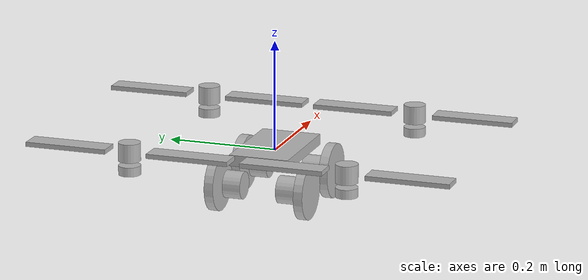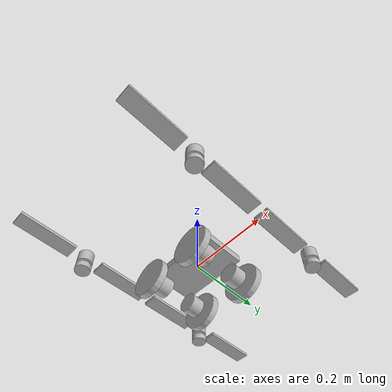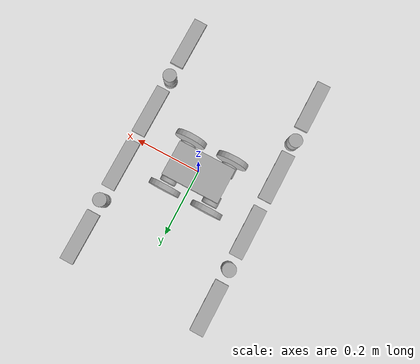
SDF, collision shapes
<sdf version='1.7'>
  <model name='arav'>
    <link name='base_link'>
      <inertial>
        <pose>1e-06 -0 -0.000651 0 -0 0</pose>
        <mass>0.510673</mass>
        <inertia>
          <ixx>0.000722388</ixx>
          <ixy>1.63791e-24</ixy>
          <ixz>-5.50202e-07</ixz>
          <iyy>0.00158624</iyy>
          <iyz>-1.38686e-13</iyz>
          <izz>0.00223359</izz>
        </inertia>
      </inertial>
      <collision name='base_link_fixed_joint_lump__frame_link_collision'>
        <pose>0 0 0 0 -0 0</pose>
        <geometry>
          <box>
            <size>0.18 0.11 0.02</size>
          </box>
        </geometry>
      </collision>
      <collision name='base_link_fixed_joint_lump__axle_leftFront_link_collision_1'>
        <pose>0.07 0.05 -0.05 1.5708 -0 0</pose>
        <geometry>
          <cylinder>
            <length>0.0333333</length>
            <radius>0.025</radius>
          </cylinder>
        </geometry>
      </collision>
      <collision name='base_link_fixed_joint_lump__axle_leftRear_link_collision_2'>
        <pose>-0.07 0.05 -0.05 1.5708 -0 0</pose>
        <geometry>
          <cylinder>
            <length>0.0333333</length>
            <radius>0.025</radius>
          </cylinder>
        </geometry>
      </collision>
      <collision name='base_link_fixed_joint_lump__axle_rightFront_link_collision_3'>
        <pose>0.07 -0.05 -0.05 1.5708 -0 0</pose>
        <geometry>
          <cylinder>
            <length>0.0333333</length>
            <radius>0.025</radius>
          </cylinder>
        </geometry>
      </collision>
      <collision name='base_link_fixed_joint_lump__axle_rightRear_link_collision_4'>
        <pose>-0.07 -0.05 -0.05 1.5708 -0 0</pose>
        <geometry>
          <cylinder>
            <length>0.0333333</length>
            <radius>0.025</radius>
          </cylinder>
        </geometry>
      </collision>
      <collision name='base_link_fixed_joint_lump__stator_leftFront_link_collision_5'>
        <pose>0.2 0.2 0 0 -0 0</pose>
        <geometry>
          <cylinder>
            <length>0.0166667</length>
            <radius>0.02</radius>
          </cylinder>
        </geometry>
      </collision>
      <collision name='base_link_fixed_joint_lump__stator_leftRear_link_collision_6'>
        <pose>-0.2 0.2 0 0 -0 0</pose>
        <geometry>
          <cylinder>
            <length>0.0166667</length>
            <radius>0.02</radius>
          </cylinder>
        </geometry>
      </collision>
      <collision name='base_link_fixed_joint_lump__stator_rightFront_link_collision_7'>
        <pose>0.2 -0.2 0 0 -0 0</pose>
        <geometry>
          <cylinder>
            <length>0.0166667</length>
            <radius>0.02</radius>
          </cylinder>
        </geometry>
      </collision>
      <collision name='base_link_fixed_joint_lump__stator_rightRear_link_collision_8'>
        <pose>-0.2 -0.2 0 0 -0 0</pose>
        <geometry>
          <cylinder>
            <length>0.0166667</length>
            <radius>0.02</radius>
          </cylinder>
        </geometry>
      </collision>
      <visual name='base_link_fixed_joint_lump__frame_link_visual'>
        <pose>0.004 0 -0.02 0 -0 0</pose>
        <geometry>
          <mesh>
            <scale>1 1 1</scale>
            <uri>model://arav/meshes/frame.dae</uri>
          </mesh>
        </geometry>
      </visual>
      <sensor name='frontLeftCamera' type='camera'>
        <update_rate>0.4</update_rate>
        <camera name='frontLeftCamera'>
          <horizontal_fov>1.5708</horizontal_fov>
          <image>
            <width>1280</width>
            <height>720</height>
            <format>R8G8B8</format>
          </image>
          <clip>
            <near>0.01</near>
            <far>100</far>
          </clip>
          <noise>
            <type>gaussian</type>
            <mean>0</mean>
            <stddev>0</stddev>
          </noise>
        </camera>
        <plugin name='camera_plugin' filename='libgazebo_ros_camera.so'>
          <alwaysOn>1</alwaysOn>
          <updateRate>0.4</updateRate>
          <cameraName>sensors/frontLeftCamera</cameraName>
          <imageTopicName>image</imageTopicName>
          <cameraInfoTopicName>info</cameraInfoTopicName>
          <frameName>frontLeftCamera</frameName>
        </plugin>
        <pose>-0.25 -0.05 0.1 0 -0 3.14159</pose>
      </sensor>
      <sensor name='frontRightCamera' type='camera'>
        <update_rate>0.4</update_rate>
        <camera name='frontRightCamera'>
          <horizontal_fov>1.5708</horizontal_fov>
          <image>
            <width>1280</width>
            <height>720</height>
            <format>R8G8B8</format>
          </image>
          <clip>
            <near>0.01</near>
            <far>100</far>
          </clip>
          <noise>
            <type>gaussian</type>
            <mean>0</mean>
            <stddev>0</stddev>
          </noise>
        </camera>
        <plugin name='camera_plugin' filename='libgazebo_ros_camera.so'>
          <alwaysOn>1</alwaysOn>
          <updateRate>0.4</updateRate>
          <cameraName>sensors/frontRightCamera</cameraName>
          <imageTopicName>image</imageTopicName>
          <cameraInfoTopicName>info</cameraInfoTopicName>
          <frameName>frontRightCamera</frameName>
        </plugin>
        <pose>-0.25 0.05 0.1 0 -0 3.14159</pose>
      </sensor>
      <sensor name='frontUltrasonic' type='ray'>
        <update_rate>1</update_rate>
        <visualize>1</visualize>
        <ray>
          <scan>
            <horizontal>
              <samples>10</samples>
              <resolution>1</resolution>
              <min_angle>-0.05</min_angle>
              <max_angle>0.05</max_angle>
            </horizontal>
          </scan>
          <range>
            <min>0.02</min>
            <max>6</max>
            <resolution>0.03</resolution>
          </range>
        </ray>
        <plugin name='ultrasonic_plugin' filename='libgazebo_ros_range.so'>
          <gaussianNoise>0.0</gaussianNoise>
          <alwaysOn>1</alwaysOn>
          <updateRate>1</updateRate>
          <topicName>sensors/frontUltrasonic</topicName>
          <frameName>frontUltrasonic</frameName>
          <radiation>ultrasound</radiation>
          <fov>0.05--0.05</fov>
          <visualize>1</visualize>
        </plugin>
        <pose>-0.13 0 0 0 -0 3.14159</pose>
      </sensor>
      <sensor name='leftUltrasonic' type='ray'>
        <update_rate>1</update_rate>
        <visualize>1</visualize>
        <ray>
          <scan>
            <horizontal>
              <samples>10</samples>
              <resolution>1</resolution>
              <min_angle>-0.05</min_angle>
              <max_angle>0.05</max_angle>
            </horizontal>
          </scan>
          <range>
            <min>0.02</min>
            <max>6</max>
            <resolution>0.03</resolution>
          </range>
        </ray>
        <plugin name='ultrasonic_plugin' filename='libgazebo_ros_range.so'>
          <gaussianNoise>0.0</gaussianNoise>
          <alwaysOn>1</alwaysOn>
          <updateRate>1</updateRate>
          <topicName>sensors/leftUltrasonic</topicName>
          <frameName>leftUltrasonic</frameName>
          <radiation>ultrasound</radiation>
          <fov>0.05--0.05</fov>
          <visualize>1</visualize>
        </plugin>
        <pose>-0.13 -0.075 0 0 -0 2.61799</pose>
      </sensor>
      <sensor name='rightUltrasonic' type='ray'>
        <update_rate>1</update_rate>
        <visualize>1</visualize>
        <ray>
          <scan>
            <horizontal>
              <samples>10</samples>
              <resolution>1</resolution>
              <min_angle>-0.05</min_angle>
              <max_angle>0.05</max_angle>
            </horizontal>
          </scan>
          <range>
            <min>0.02</min>
            <max>6</max>
            <resolution>0.03</resolution>
          </range>
        </ray>
        <plugin name='ultrasonic_plugin' filename='libgazebo_ros_range.so'>
          <gaussianNoise>0.0</gaussianNoise>
          <alwaysOn>1</alwaysOn>
          <updateRate>1</updateRate>
          <topicName>sensors/rightUltrasonic</topicName>
          <frameName>rightUltrasonic</frameName>
          <radiation>ultrasound</radiation>
          <fov>0.05--0.05</fov>
          <visualize>1</visualize>
        </plugin>
        <pose>-0.13 0.075 0 0 0 -2.61799</pose>
      </sensor>
      <sensor name='visualCamera' type='camera'>
        <update_rate>15</update_rate>
        <camera name='visualCamera'>
          <horizontal_fov>1.75</horizontal_fov>
          <image>
            <width>1280</width>
            <height>720</height>
            <format>R8G8B8</format>
          </image>
          <clip>
            <near>0.001</near>
            <far>100</far>
          </clip>
          <noise>
            <type>gaussian</type>
            <mean>0</mean>
            <stddev>0</stddev>
          </noise>
        </camera>
        <plugin name='camera_plugin' filename='libgazebo_ros_camera.so'>
          <alwaysOn>1</alwaysOn>
          <updateRate>15</updateRate>
          <cameraName>sensors/visualCamera</cameraName>
          <imageTopicName>image</imageTopicName>
          <cameraInfoTopicName>info</cameraInfoTopicName>
          <frameName>visualCamera</frameName>
        </plugin>
        <pose>1.2 0 0.5 0 0.2 -3.13319</pose>
      </sensor>
    </link>
    <joint name='tire_leftFront_joint' type='revolute'>
      <pose relative_to='base_link'>0.07 0.083333 -0.05 1.5708 -0 0</pose>
      <parent>base_link</parent>
      <child>tire_leftFront_link</child>
      <axis>
        <xyz>0 0 1</xyz>
        <limit>
          <effort>50</effort>
          <velocity>50</velocity>
          <lower>-1e+16</lower>
          <upper>1e+16</upper>
        </limit>
        <dynamics>
          <damping>0.1</damping>
          <friction>0.1</friction>
          <spring_reference>0</spring_reference>
          <spring_stiffness>0</spring_stiffness>
        </dynamics>
      </axis>
    </joint>
    <link name='tire_leftFront_link'>
      <pose relative_to='tire_leftFront_joint'>0 0 0 0 -0 0</pose>
      <inertial>
        <pose>0 0 0 0 -0 0</pose>
        <mass>0.00333333</mass>
        <inertia>
          <ixx>2.16049e-06</ixx>
          <ixy>0</ixy>
          <ixz>0</ixz>
          <iyy>2.16049e-06</iyy>
          <iyz>0</iyz>
          <izz>4.16667e-06</izz>
        </inertia>
      </inertial>
      <collision name='tire_leftFront_link_collision'>
        <pose>0 0 0 0 -0 0</pose>
        <geometry>
          <cylinder>
            <length>0.0166667</length>
            <radius>0.05</radius>
          </cylinder>
        </geometry>
      </collision>
    </link>
    <joint name='tire_leftRear_joint' type='revolute'>
      <pose relative_to='base_link'>-0.07 0.083333 -0.05 1.5708 -0 0</pose>
      <parent>base_link</parent>
      <child>tire_leftRear_link</child>
      <axis>
        <xyz>0 0 1</xyz>
        <limit>
          <effort>50</effort>
          <velocity>50</velocity>
          <lower>-1e+16</lower>
          <upper>1e+16</upper>
        </limit>
        <dynamics>
          <damping>0.1</damping>
          <friction>0.1</friction>
          <spring_reference>0</spring_reference>
          <spring_stiffness>0</spring_stiffness>
        </dynamics>
      </axis>
    </joint>
    <link name='tire_leftRear_link'>
      <pose relative_to='tire_leftRear_joint'>0 0 0 0 -0 0</pose>
      <inertial>
        <pose>0 0 0 0 -0 0</pose>
        <mass>0.00333333</mass>
        <inertia>
          <ixx>2.16049e-06</ixx>
          <ixy>0</ixy>
          <ixz>0</ixz>
          <iyy>2.16049e-06</iyy>
          <iyz>0</iyz>
          <izz>4.16667e-06</izz>
        </inertia>
      </inertial>
      <collision name='tire_leftRear_link_collision'>
        <pose>0 0 0 0 -0 0</pose>
        <geometry>
          <cylinder>
            <length>0.0166667</length>
            <radius>0.05</radius>
          </cylinder>
        </geometry>
      </collision>
    </link>
    <joint name='tire_rightFront_joint' type='revolute'>
      <pose relative_to='base_link'>0.07 -0.083333 -0.05 1.5708 -0 0</pose>
      <parent>base_link</parent>
      <child>tire_rightFront_link</child>
      <axis>
        <xyz>0 0 1</xyz>
        <limit>
          <effort>50</effort>
          <velocity>50</velocity>
          <lower>-1e+16</lower>
          <upper>1e+16</upper>
        </limit>
        <dynamics>
          <damping>0.1</damping>
          <friction>0.1</friction>
          <spring_reference>0</spring_reference>
          <spring_stiffness>0</spring_stiffness>
        </dynamics>
      </axis>
    </joint>
    <link name='tire_rightFront_link'>
      <pose relative_to='tire_rightFront_joint'>0 0 0 0 -0 0</pose>
      <inertial>
        <pose>0 0 0 0 -0 0</pose>
        <mass>0.00333333</mass>
        <inertia>
          <ixx>2.16049e-06</ixx>
          <ixy>0</ixy>
          <ixz>0</ixz>
          <iyy>2.16049e-06</iyy>
          <iyz>0</iyz>
          <izz>4.16667e-06</izz>
        </inertia>
      </inertial>
      <collision name='tire_rightFront_link_collision'>
        <pose>0 0 0 0 -0 0</pose>
        <geometry>
          <cylinder>
            <length>0.0166667</length>
            <radius>0.05</radius>
          </cylinder>
        </geometry>
      </collision>
    </link>
    <joint name='tire_rightRear_joint' type='revolute'>
      <pose relative_to='base_link'>-0.07 -0.083333 -0.05 1.5708 -0 0</pose>
      <parent>base_link</parent>
      <child>tire_rightRear_link</child>
      <axis>
        <xyz>0 0 1</xyz>
        <limit>
          <effort>50</effort>
          <velocity>50</velocity>
          <lower>-1e+16</lower>
          <upper>1e+16</upper>
        </limit>
        <dynamics>
          <damping>0.1</damping>
          <friction>0.1</friction>
          <spring_reference>0</spring_reference>
          <spring_stiffness>0</spring_stiffness>
        </dynamics>
      </axis>
    </joint>
    <link name='tire_rightRear_link'>
      <pose relative_to='tire_rightRear_joint'>0 0 0 0 -0 0</pose>
      <inertial>
        <pose>0 0 0 0 -0 0</pose>
        <mass>0.00333333</mass>
        <inertia>
          <ixx>2.16049e-06</ixx>
          <ixy>0</ixy>
          <ixz>0</ixz>
          <iyy>2.16049e-06</iyy>
          <iyz>0</iyz>
          <izz>4.16667e-06</izz>
        </inertia>
      </inertial>
      <collision name='tire_rightRear_link_collision'>
        <pose>0 0 0 0 -0 0</pose>
        <geometry>
          <cylinder>
            <length>0.0166667</length>
            <radius>0.05</radius>
          </cylinder>
        </geometry>
      </collision>
    </link>
    <joint name='rotor_leftFront_joint' type='revolute'>
      <pose relative_to='base_link'>0.2 0.2 0.033333 0 -0 0</pose>
      <parent>base_link</parent>
      <child>rotor_leftFront_link</child>
      <axis>
        <xyz>0 0 1</xyz>
        <limit>
          <lower>-1e+16</lower>
          <upper>1e+16</upper>
        </limit>
        <dynamics>
          <spring_reference>0</spring_reference>
          <spring_stiffness>0</spring_stiffness>
        </dynamics>
      </axis>
    </joint>
    <link name='rotor_leftFront_link'>
      <pose relative_to='rotor_leftFront_joint'>0 0 0 0 -0 0</pose>
      <inertial>
        <pose>0 0 0 0 -0 0</pose>
        <mass>0.002</mass>
        <inertia>
          <ixx>3.85185e-07</ixx>
          <ixy>0</ixy>
          <ixz>0</ixz>
          <iyy>3.85185e-07</iyy>
          <iyz>0</iyz>
          <izz>4e-07</izz>
        </inertia>
      </inertial>
      <collision name='rotor_leftFront_link_collision'>
        <pose>0 0 0 0 -0 0</pose>
        <geometry>
          <cylinder>
            <length>0.0333333</length>
            <radius>0.02</radius>
          </cylinder>
        </geometry>
      </collision>
    </link>
    <joint name='propeller_1_leftFront_joint' type='fixed'>
      <pose relative_to='rotor_leftFront_link'>0 -0.11375 0 0 -0 0</pose>
      <parent>rotor_leftFront_link</parent>
      <child>propeller_1_leftFront_link</child>
      <axis>
        <dynamics>
          <spring_reference>0</spring_reference>
          <spring_stiffness>0</spring_stiffness>
        </dynamics>
        <xyz>0 0 1</xyz>
        <limit>
          <lower>-1e+16</lower>
          <upper>1e+16</upper>
        </limit>
      </axis>
      <physics>
        <ode>
          <limit>
            <cfm>0</cfm>
            <erp>0.2</erp>
          </limit>
        </ode>
      </physics>
    </joint>
    <link name='propeller_1_leftFront_link'>
      <pose relative_to='propeller_1_leftFront_joint'>0 0 0 0 -0 0</pose>
      <inertial>
        <pose>0 0 0 1.5708 -0 0</pose>
        <mass>0.001</mass>
        <inertia>
          <ixx>1.88079e-06</ixx>
          <ixy>0</ixy>
          <ixz>0</ixz>
          <iyy>2.00833e-06</iyy>
          <iyz>0</iyz>
          <izz>1.3912e-07</izz>
        </inertia>
      </inertial>
      <collision name='propeller_1_leftFront_link_collision'>
        <pose>0 0 0 1.5708 -0 0</pose>
        <geometry>
          <box>
            <size>0.04 0.008333 0.15</size>
          </box>
        </geometry>
      </collision>
    </link>
    <joint name='propeller_2_leftFront_joint' type='fixed'>
      <pose relative_to='rotor_leftFront_link'>0 0.11375 0 0 -0 0</pose>
      <parent>rotor_leftFront_link</parent>
      <child>propeller_2_leftFront_link</child>
      <axis>
        <dynamics>
          <spring_reference>0</spring_reference>
          <spring_stiffness>0</spring_stiffness>
        </dynamics>
        <xyz>0 0 1</xyz>
        <limit>
          <lower>-1e+16</lower>
          <upper>1e+16</upper>
        </limit>
      </axis>
      <physics>
        <ode>
          <limit>
            <cfm>0</cfm>
            <erp>0.2</erp>
          </limit>
        </ode>
      </physics>
    </joint>
    <link name='propeller_2_leftFront_link'>
      <pose relative_to='propeller_2_leftFront_joint'>0 0 0 0 -0 0</pose>
      <inertial>
        <pose>0 0 0 1.5708 -0 0</pose>
        <mass>0.001</mass>
        <inertia>
          <ixx>1.88079e-06</ixx>
          <ixy>0</ixy>
          <ixz>0</ixz>
          <iyy>2.00833e-06</iyy>
          <iyz>0</iyz>
          <izz>1.3912e-07</izz>
        </inertia>
      </inertial>
      <collision name='propeller_2_leftFront_link_collision'>
        <pose>0 0 0 1.5708 -0 0</pose>
        <geometry>
          <box>
            <size>0.04 0.008333 0.15</size>
          </box>
        </geometry>
      </collision>
    </link>
    <joint name='rotor_leftRear_joint' type='revolute'>
      <pose relative_to='base_link'>-0.2 0.2 0.033333 0 -0 0</pose>
      <parent>base_link</parent>
      <child>rotor_leftRear_link</child>
      <axis>
        <xyz>0 0 1</xyz>
        <limit>
          <lower>-1e+16</lower>
          <upper>1e+16</upper>
        </limit>
        <dynamics>
          <spring_reference>0</spring_reference>
          <spring_stiffness>0</spring_stiffness>
        </dynamics>
      </axis>
    </joint>
    <link name='rotor_leftRear_link'>
      <pose relative_to='rotor_leftRear_joint'>0 0 0 0 -0 0</pose>
      <inertial>
        <pose>0 0 0 0 -0 0</pose>
        <mass>0.002</mass>
        <inertia>
          <ixx>3.85185e-07</ixx>
          <ixy>0</ixy>
          <ixz>0</ixz>
          <iyy>3.85185e-07</iyy>
          <iyz>0</iyz>
          <izz>4e-07</izz>
        </inertia>
      </inertial>
      <collision name='rotor_leftRear_link_collision'>
        <pose>0 0 0 0 -0 0</pose>
        <geometry>
          <cylinder>
            <length>0.0333333</length>
            <radius>0.02</radius>
          </cylinder>
        </geometry>
      </collision>
    </link>
    <joint name='propeller_1_leftRear_joint' type='fixed'>
      <pose relative_to='rotor_leftRear_link'>0 -0.11375 0 0 -0 0</pose>
      <parent>rotor_leftRear_link</parent>
      <child>propeller_1_leftRear_link</child>
      <axis>
        <dynamics>
          <spring_reference>0</spring_reference>
          <spring_stiffness>0</spring_stiffness>
        </dynamics>
        <xyz>0 0 1</xyz>
        <limit>
          <lower>-1e+16</lower>
          <upper>1e+16</upper>
        </limit>
      </axis>
      <physics>
        <ode>
          <limit>
            <cfm>0</cfm>
            <erp>0.2</erp>
          </limit>
        </ode>
      </physics>
    </joint>
    <link name='propeller_1_leftRear_link'>
      <pose relative_to='propeller_1_leftRear_joint'>0 0 0 0 -0 0</pose>
      <inertial>
        <pose>0 0 0 1.5708 -0 0</pose>
        <mass>0.001</mass>
        <inertia>
          <ixx>1.88079e-06</ixx>
          <ixy>0</ixy>
          <ixz>0</ixz>
          <iyy>2.00833e-06</iyy>
          <iyz>0</iyz>
          <izz>1.3912e-07</izz>
        </inertia>
      </inertial>
      <collision name='propeller_1_leftRear_link_collision'>
        <pose>0 0 0 1.5708 -0 0</pose>
        <geometry>
          <box>
            <size>0.04 0.008333 0.15</size>
          </box>
        </geometry>
      </collision>
    </link>
    <joint name='propeller_2_leftRear_joint' type='fixed'>
      <pose relative_to='rotor_leftRear_link'>0 0.11375 0 0 -0 0</pose>
      <parent>rotor_leftRear_link</parent>
      <child>propeller_2_leftRear_link</child>
      <axis>
        <dynamics>
          <spring_reference>0</spring_reference>
          <spring_stiffness>0</spring_stiffness>
        </dynamics>
        <xyz>0 0 1</xyz>
        <limit>
          <lower>-1e+16</lower>
          <upper>1e+16</upper>
        </limit>
      </axis>
      <physics>
        <ode>
          <limit>
            <cfm>0</cfm>
            <erp>0.2</erp>
          </limit>
        </ode>
      </physics>
    </joint>
    <link name='propeller_2_leftRear_link'>
      <pose relative_to='propeller_2_leftRear_joint'>0 0 0 0 -0 0</pose>
      <inertial>
        <pose>0 0 0 1.5708 -0 0</pose>
        <mass>0.001</mass>
        <inertia>
          <ixx>1.88079e-06</ixx>
          <ixy>0</ixy>
          <ixz>0</ixz>
          <iyy>2.00833e-06</iyy>
          <iyz>0</iyz>
          <izz>1.3912e-07</izz>
        </inertia>
      </inertial>
      <collision name='propeller_2_leftRear_link_collision'>
        <pose>0 0 0 1.5708 -0 0</pose>
        <geometry>
          <box>
            <size>0.04 0.008333 0.15</size>
          </box>
        </geometry>
      </collision>
    </link>
    <joint name='rotor_rightFront_joint' type='revolute'>
      <pose relative_to='base_link'>0.2 -0.2 0.033333 0 -0 0</pose>
      <parent>base_link</parent>
      <child>rotor_rightFront_link</child>
      <axis>
        <xyz>0 0 1</xyz>
        <limit>
          <lower>-1e+16</lower>
          <upper>1e+16</upper>
        </limit>
        <dynamics>
          <spring_reference>0</spring_reference>
          <spring_stiffness>0</spring_stiffness>
        </dynamics>
      </axis>
    </joint>
    <link name='rotor_rightFront_link'>
      <pose relative_to='rotor_rightFront_joint'>0 0 0 0 -0 0</pose>
      <inertial>
        <pose>0 0 0 0 -0 0</pose>
        <mass>0.002</mass>
        <inertia>
          <ixx>3.85185e-07</ixx>
          <ixy>0</ixy>
          <ixz>0</ixz>
          <iyy>3.85185e-07</iyy>
          <iyz>0</iyz>
          <izz>4e-07</izz>
        </inertia>
      </inertial>
      <collision name='rotor_rightFront_link_collision'>
        <pose>0 0 0 0 -0 0</pose>
        <geometry>
          <cylinder>
            <length>0.0333333</length>
            <radius>0.02</radius>
          </cylinder>
        </geometry>
      </collision>
    </link>
    <joint name='propeller_1_rightFront_joint' type='fixed'>
      <pose relative_to='rotor_rightFront_link'>0 -0.11375 0 0 -0 0</pose>
      <parent>rotor_rightFront_link</parent>
      <child>propeller_1_rightFront_link</child>
      <axis>
        <dynamics>
          <spring_reference>0</spring_reference>
          <spring_stiffness>0</spring_stiffness>
        </dynamics>
        <xyz>0 0 1</xyz>
        <limit>
          <lower>-1e+16</lower>
          <upper>1e+16</upper>
        </limit>
      </axis>
      <physics>
        <ode>
          <limit>
            <cfm>0</cfm>
            <erp>0.2</erp>
          </limit>
        </ode>
      </physics>
    </joint>
    <link name='propeller_1_rightFront_link'>
      <pose relative_to='propeller_1_rightFront_joint'>0 0 0 0 -0 0</pose>
      <inertial>
        <pose>0 0 0 1.5708 -0 0</pose>
        <mass>0.001</mass>
        <inertia>
          <ixx>1.88079e-06</ixx>
          <ixy>0</ixy>
          <ixz>0</ixz>
          <iyy>2.00833e-06</iyy>
          <iyz>0</iyz>
          <izz>1.3912e-07</izz>
        </inertia>
      </inertial>
      <collision name='propeller_1_rightFront_link_collision'>
        <pose>0 0 0 1.5708 -0 0</pose>
        <geometry>
          <box>
            <size>0.04 0.008333 0.15</size>
          </box>
        </geometry>
      </collision>
    </link>
    <joint name='propeller_2_rightFront_joint' type='fixed'>
      <pose relative_to='rotor_rightFront_link'>0 0.11375 0 0 -0 0</pose>
      <parent>rotor_rightFront_link</parent>
      <child>propeller_2_rightFront_link</child>
      <axis>
        <dynamics>
          <spring_reference>0</spring_reference>
          <spring_stiffness>0</spring_stiffness>
        </dynamics>
        <xyz>0 0 1</xyz>
        <limit>
          <lower>-1e+16</lower>
          <upper>1e+16</upper>
        </limit>
      </axis>
      <physics>
        <ode>
          <limit>
            <cfm>0</cfm>
            <erp>0.2</erp>
          </limit>
        </ode>
      </physics>
    </joint>
    <link name='propeller_2_rightFront_link'>
      <pose relative_to='propeller_2_rightFront_joint'>0 0 0 0 -0 0</pose>
      <inertial>
        <pose>0 0 0 1.5708 -0 0</pose>
        <mass>0.001</mass>
        <inertia>
          <ixx>1.88079e-06</ixx>
          <ixy>0</ixy>
          <ixz>0</ixz>
          <iyy>2.00833e-06</iyy>
          <iyz>0</iyz>
          <izz>1.3912e-07</izz>
        </inertia>
      </inertial>
      <collision name='propeller_2_rightFront_link_collision'>
        <pose>0 0 0 1.5708 -0 0</pose>
        <geometry>
          <box>
            <size>0.04 0.008333 0.15</size>
          </box>
        </geometry>
      </collision>
    </link>
    <joint name='rotor_rightRear_joint' type='revolute'>
      <pose relative_to='base_link'>-0.2 -0.2 0.033333 0 -0 0</pose>
      <parent>base_link</parent>
      <child>rotor_rightRear_link</child>
      <axis>
        <xyz>0 0 1</xyz>
        <limit>
          <lower>-1e+16</lower>
          <upper>1e+16</upper>
        </limit>
        <dynamics>
          <spring_reference>0</spring_reference>
          <spring_stiffness>0</spring_stiffness>
        </dynamics>
      </axis>
    </joint>
    <link name='rotor_rightRear_link'>
      <pose relative_to='rotor_rightRear_joint'>0 0 0 0 -0 0</pose>
      <inertial>
        <pose>0 0 0 0 -0 0</pose>
        <mass>0.002</mass>
        <inertia>
          <ixx>3.85185e-07</ixx>
          <ixy>0</ixy>
          <ixz>0</ixz>
          <iyy>3.85185e-07</iyy>
          <iyz>0</iyz>
          <izz>4e-07</izz>
        </inertia>
      </inertial>
      <collision name='rotor_rightRear_link_collision'>
        <pose>0 0 0 0 -0 0</pose>
        <geometry>
          <cylinder>
            <length>0.0333333</length>
            <radius>0.02</radius>
          </cylinder>
        </geometry>
      </collision>
    </link>
    <joint name='propeller_1_rightRear_joint' type='fixed'>
      <pose relative_to='rotor_rightRear_link'>0 -0.11375 0 0 -0 0</pose>
      <parent>rotor_rightRear_link</parent>
      <child>propeller_1_rightRear_link</child>
      <axis>
        <dynamics>
          <spring_reference>0</spring_reference>
          <spring_stiffness>0</spring_stiffness>
        </dynamics>
        <xyz>0 0 1</xyz>
        <limit>
          <lower>-1e+16</lower>
          <upper>1e+16</upper>
        </limit>
      </axis>
      <physics>
        <ode>
          <limit>
            <cfm>0</cfm>
            <erp>0.2</erp>
          </limit>
        </ode>
      </physics>
    </joint>
    <link name='propeller_1_rightRear_link'>
      <pose relative_to='propeller_1_rightRear_joint'>0 0 0 0 -0 0</pose>
      <inertial>
        <pose>0 0 0 1.5708 -0 0</pose>
        <mass>0.001</mass>
        <inertia>
          <ixx>1.88079e-06</ixx>
          <ixy>0</ixy>
          <ixz>0</ixz>
          <iyy>2.00833e-06</iyy>
          <iyz>0</iyz>
          <izz>1.3912e-07</izz>
        </inertia>
      </inertial>
      <collision name='propeller_1_rightRear_link_collision'>
        <pose>0 0 0 1.5708 -0 0</pose>
        <geometry>
          <box>
            <size>0.04 0.008333 0.15</size>
          </box>
        </geometry>
      </collision>
    </link>
    <joint name='propeller_2_rightRear_joint' type='fixed'>
      <pose relative_to='rotor_rightRear_link'>0 0.11375 0 0 -0 0</pose>
      <parent>rotor_rightRear_link</parent>
      <child>propeller_2_rightRear_link</child>
      <axis>
        <dynamics>
          <spring_reference>0</spring_reference>
          <spring_stiffness>0</spring_stiffness>
        </dynamics>
        <xyz>0 0 1</xyz>
        <limit>
          <lower>-1e+16</lower>
          <upper>1e+16</upper>
        </limit>
      </axis>
      <physics>
        <ode>
          <limit>
            <cfm>0</cfm>
            <erp>0.2</erp>
          </limit>
        </ode>
      </physics>
    </joint>
    <link name='propeller_2_rightRear_link'>
      <pose relative_to='propeller_2_rightRear_joint'>0 0 0 0 -0 0</pose>
      <inertial>
        <pose>0 0 0 1.5708 -0 0</pose>
        <mass>0.001</mass>
        <inertia>
          <ixx>1.88079e-06</ixx>
          <ixy>0</ixy>
          <ixz>0</ixz>
          <iyy>2.00833e-06</iyy>
          <iyz>0</iyz>
          <izz>1.3912e-07</izz>
        </inertia>
      </inertial>
      <collision name='propeller_2_rightRear_link_collision'>
        <pose>0 0 0 1.5708 -0 0</pose>
        <geometry>
          <box>
            <size>0.04 0.008333 0.15</size>
          </box>
        </geometry>
      </collision>
    </link>
  <plugin name='skid_steer_drive_controller' filename='libgazebo_ros_skid_steer_drive.so'>
      <updateRate>100</updateRate>
      <robotNamespace>control/ground</robotNamespace>
      <leftFrontJoint>tire_rightFront_joint</leftFrontJoint>
      <rightFrontJoint>tire_leftFront_joint</rightFrontJoint>
      <leftRearJoint>tire_rightRear_joint</leftRearJoint>
      <rightRearJoint>tire_leftRear_joint</rightRearJoint>
      <wheelSeparation>0.16666666666666669</wheelSeparation>
      <wheelDiameter>0.1</wheelDiameter>
      <robotBaseFrame>base_link</robotBaseFrame>
      <torque>50</torque>
      <broadcastTF>1</broadcastTF>
      <commandTopic>cmd</commandTopic>
      <odometryTopic>odom</odometryTopic>
      <odometryFrame>odom</odometryFrame>
      <covariance_x>0.0001</covariance_x>
      <covariance_y>0.0001</covariance_y>
      <covariance_yaw>0.0001</covariance_yaw>
  </plugin>
    <plugin name='multirotor' filename='libgazebo_multirotor_base_plugin.so'>
      <robotNamespace/>
      <linkName>base_link</linkName>
      <rotorVelocitySlowdownSim>10</rotorVelocitySlowdownSim>
    </plugin>
    <plugin name='Rotor_leftFront_model' filename='libgazebo_motor_model.so'>
      <robotNamespace>/control/air</robotNamespace>
      <jointName>rotor_leftFront_joint</jointName>
      <linkName>rotor_leftFront_link</linkName>
      <turningDirection>ccw</turningDirection>
      <timeConstantUp>0.0125</timeConstantUp>
      <timeConstantDown>0.025</timeConstantDown>
      <maxRotVelocity>1100</maxRotVelocity>
      <motorConstant>5.84e-06</motorConstant>
      <momentConstant>0.06</momentConstant>
      <commandSubTopic>/gazebo/command/motor_speed</commandSubTopic>
      <motorNumber>2</motorNumber>
      <rotorDragCoefficient>0.000175</rotorDragCoefficient>
      <rollingMomentCoefficient>1e-06</rollingMomentCoefficient>
      <motorSpeedPubTopic>/motor_speed/0</motorSpeedPubTopic>
      <rotorVelocitySlowdownSim>50</rotorVelocitySlowdownSim>
    </plugin>
    <plugin name='Rotor_rightFront_model' filename='libgazebo_motor_model.so'>
      <robotNamespace>/control/air</robotNamespace>
      <jointName>rotor_rightFront_joint</jointName>
      <linkName>rotor_rightFront_link</linkName>
      <turningDirection>cw</turningDirection>
      <timeConstantUp>0.0125</timeConstantUp>
      <timeConstantDown>0.025</timeConstantDown>
      <maxRotVelocity>1100</maxRotVelocity>
      <motorConstant>5.84e-06</motorConstant>
      <momentConstant>0.06</momentConstant>
      <commandSubTopic>/gazebo/command/motor_speed</commandSubTopic>
      <motorNumber>0</motorNumber>
      <rotorDragCoefficient>0.000175</rotorDragCoefficient>
      <rollingMomentCoefficient>1e-06</rollingMomentCoefficient>
      <motorSpeedPubTopic>/motor_speed/0</motorSpeedPubTopic>
      <rotorVelocitySlowdownSim>50</rotorVelocitySlowdownSim>
    </plugin>
    <plugin name='Rotor_rightRear_model' filename='libgazebo_motor_model.so'>
      <robotNamespace>/control/air</robotNamespace>
      <jointName>rotor_rightRear_joint</jointName>
      <linkName>rotor_rightRear_link</linkName>
      <turningDirection>ccw</turningDirection>
      <timeConstantUp>0.0125</timeConstantUp>
      <timeConstantDown>0.025</timeConstantDown>
      <maxRotVelocity>1100</maxRotVelocity>
      <motorConstant>5.84e-06</motorConstant>
      <momentConstant>0.06</momentConstant>
      <commandSubTopic>/gazebo/command/motor_speed</commandSubTopic>
      <motorNumber>3</motorNumber>
      <rotorDragCoefficient>0.000175</rotorDragCoefficient>
      <rollingMomentCoefficient>1e-06</rollingMomentCoefficient>
      <motorSpeedPubTopic>/motor_speed/0</motorSpeedPubTopic>
      <rotorVelocitySlowdownSim>50</rotorVelocitySlowdownSim>
    </plugin>
    <plugin name='Rotor_leftRear_model' filename='libgazebo_motor_model.so'>
      <robotNamespace>/control/air</robotNamespace>
      <jointName>rotor_leftRear_joint</jointName>
      <linkName>rotor_leftRear_link</linkName>
      <turningDirection>cw</turningDirection>
      <timeConstantUp>0.0125</timeConstantUp>
      <timeConstantDown>0.025</timeConstantDown>
      <maxRotVelocity>1100</maxRotVelocity>
      <motorConstant>5.84e-06</motorConstant>
      <momentConstant>0.06</momentConstant>
      <commandSubTopic>/gazebo/command/motor_speed</commandSubTopic>
      <motorNumber>1</motorNumber>
      <rotorDragCoefficient>0.000175</rotorDragCoefficient>
      <rollingMomentCoefficient>1e-06</rollingMomentCoefficient>
      <motorSpeedPubTopic>/motor_speed/0</motorSpeedPubTopic>
      <rotorVelocitySlowdownSim>50</rotorVelocitySlowdownSim>
    </plugin>
    <plugin name='mavlink_interface' filename='libgazebo_mavlink_interface.so'>
      <robotNamespace/>
      <imuSubTopic>/imu</imuSubTopic>
      <magSubTopic>/mag</magSubTopic>
      <baroSubTopic>/baro</baroSubTopic>
      <mavlink_addr>INADDR_ANY</mavlink_addr>
      <mavlink_tcp_port>4560</mavlink_tcp_port>
      <mavlink_udp_port>14560</mavlink_udp_port>
      <serialEnabled>0</serialEnabled>
      <serialDevice>/dev/ttyACM0</serialDevice>
      <baudRate>921600</baudRate>
      <qgc_addr>INADDR_ANY</qgc_addr>
      <qgc_udp_port>14550</qgc_udp_port>
      <sdk_addr>INADDR_ANY</sdk_addr>
      <sdk_udp_port>14540</sdk_udp_port>
      <hil_mode>0</hil_mode>
      <hil_state_level>0</hil_state_level>
      <send_vision_estimation>0</send_vision_estimation>
      <send_odometry>1</send_odometry>
      <enable_lockstep>1</enable_lockstep>
      <use_tcp>1</use_tcp>
      <motorSpeedCommandPubTopic>/gazebo/command/motor_speed</motorSpeedCommandPubTopic>
      <control_channels>
        <channel name='rotor1'>
          <input_index>0</input_index>
          <input_offset>0</input_offset>
          <input_scaling>1000</input_scaling>
          <zero_position_disarmed>0</zero_position_disarmed>
          <zero_position_armed>100</zero_position_armed>
          <joint_control_type>velocity</joint_control_type>
        </channel>
        <channel name='rotor2'>
          <input_index>1</input_index>
          <input_offset>0</input_offset>
          <input_scaling>1000</input_scaling>
          <zero_position_disarmed>0</zero_position_disarmed>
          <zero_position_armed>100</zero_position_armed>
          <joint_control_type>velocity</joint_control_type>
        </channel>
        <channel name='rotor3'>
          <input_index>2</input_index>
          <input_offset>0</input_offset>
          <input_scaling>1000</input_scaling>
          <zero_position_disarmed>0</zero_position_disarmed>
          <zero_position_armed>100</zero_position_armed>
          <joint_control_type>velocity</joint_control_type>
        </channel>
        <channel name='rotor4'>
          <input_index>3</input_index>
          <input_offset>0</input_offset>
          <input_scaling>1000</input_scaling>
          <zero_position_disarmed>0</zero_position_disarmed>
          <zero_position_armed>100</zero_position_armed>
          <joint_control_type>velocity</joint_control_type>
        </channel>
        <channel name='rotor5'>
          <input_index>4</input_index>
          <input_offset>1</input_offset>
          <input_scaling>324.6</input_scaling>
          <zero_position_disarmed>0</zero_position_disarmed>
          <zero_position_armed>0</zero_position_armed>
          <joint_control_type>velocity</joint_control_type>
          <joint_control_pid>
            <p>0.1</p>
            <i>0</i>
            <d>0</d>
            <iMax>0.0</iMax>
            <iMin>0.0</iMin>
            <cmdMax>2</cmdMax>
            <cmdMin>-2</cmdMin>
          </joint_control_pid>
          <joint_name>zephyr_delta_wing::propeller_joint</joint_name>
        </channel>
        <channel name='rotor6'>
          <input_index>5</input_index>
          <input_offset>0</input_offset>
          <input_scaling>0.524</input_scaling>
          <zero_position_disarmed>0</zero_position_disarmed>
          <zero_position_armed>0</zero_position_armed>
          <joint_control_type>position</joint_control_type>
          <joint_name>zephyr_delta_wing::flap_left_joint</joint_name>
          <joint_control_pid>
            <p>10.0</p>
            <i>0</i>
            <d>0</d>
            <iMax>0</iMax>
            <iMin>0</iMin>
            <cmdMax>20</cmdMax>
            <cmdMin>-20</cmdMin>
          </joint_control_pid>
        </channel>
        <channel name='rotor7'>
          <input_index>6</input_index>
          <input_offset>0</input_offset>
          <input_scaling>0.524</input_scaling>
          <zero_position_disarmed>0</zero_position_disarmed>
          <zero_position_armed>0</zero_position_armed>
          <joint_control_type>position</joint_control_type>
          <joint_name>zephyr_delta_wing::flap_right_joint</joint_name>
          <joint_control_pid>
            <p>10.0</p>
            <i>0</i>
            <d>0</d>
            <iMax>0</iMax>
            <iMin>0</iMin>
            <cmdMax>20</cmdMax>
            <cmdMin>-20</cmdMin>
          </joint_control_pid>
        </channel>
        <channel name='rotor8'>
          <input_index>7</input_index>
          <input_offset>0</input_offset>
          <input_scaling>0.524</input_scaling>
          <zero_position_disarmed>0</zero_position_disarmed>
          <zero_position_armed>0</zero_position_armed>
          <joint_control_type>position</joint_control_type>
        </channel>
      </control_channels>
    </plugin>
    <frame name='FrontLeftCamera2GroundCore' attached_to='frame_link'>
      <pose>-0.25 -0.05 0.1 0 -0 3.14159</pose>
    </frame>
    <frame name='frontLeftCamera' attached_to='FrontLeftCamera2GroundCore'/>
    <frame name='FrontRightCamera2GroundCore' attached_to='frame_link'>
      <pose>-0.25 0.05 0.1 0 -0 3.14159</pose>
    </frame>
    <frame name='frontRightCamera' attached_to='FrontRightCamera2GroundCore'/>
    <frame name='FrontUltrasonic2GroundCore' attached_to='frame_link'>
      <pose>-0.13 0 0 0 -0 3.14159</pose>
    </frame>
    <frame name='frontUltrasonic' attached_to='FrontUltrasonic2GroundCore'/>
    <frame name='LeftUltrasonic2GroundCore' attached_to='frame_link'>
      <pose>-0.13 -0.075 0 0 -0 2.61799</pose>
    </frame>
    <frame name='leftUltrasonic' attached_to='LeftUltrasonic2GroundCore'/>
    <frame name='RightUltrasonic2GroundCore' attached_to='frame_link'>
      <pose>-0.13 0.075 0 0 -0 -2.618</pose>
    </frame>
    <frame name='rightUltrasonic' attached_to='RightUltrasonic2GroundCore'/>
    <frame name='axle_leftFront_joint' attached_to='frame_link'>
      <pose>0.07 0.05 -0.05 1.5708 -0 0</pose>
    </frame>
    <frame name='axle_leftFront_link' attached_to='axle_leftFront_joint'/>
    <frame name='axle_leftRear_joint' attached_to='frame_link'>
      <pose>-0.07 0.05 -0.05 1.5708 -0 0</pose>
    </frame>
    <frame name='axle_leftRear_link' attached_to='axle_leftRear_joint'/>
    <frame name='axle_rightFront_joint' attached_to='frame_link'>
      <pose>0.07 -0.05 -0.05 1.5708 -0 0</pose>
    </frame>
    <frame name='axle_rightFront_link' attached_to='axle_rightFront_joint'/>
    <frame name='axle_rightRear_joint' attached_to='frame_link'>
      <pose>-0.07 -0.05 -0.05 1.5708 -0 0</pose>
    </frame>
    <frame name='axle_rightRear_link' attached_to='axle_rightRear_joint'/>
    <frame name='stator_leftFront_joint' attached_to='frame_link'>
      <pose>0.2 0.2 0 0 -0 0</pose>
    </frame>
    <frame name='stator_leftFront_link' attached_to='stator_leftFront_joint'/>
    <frame name='stator_leftRear_joint' attached_to='frame_link'>
      <pose>-0.2 0.2 0 0 -0 0</pose>
    </frame>
    <frame name='stator_leftRear_link' attached_to='stator_leftRear_joint'/>
    <frame name='stator_rightFront_joint' attached_to='frame_link'>
      <pose>0.2 -0.2 0 0 -0 0</pose>
    </frame>
    <frame name='stator_rightFront_link' attached_to='stator_rightFront_joint'/>
    <frame name='stator_rightRear_joint' attached_to='frame_link'>
      <pose>-0.2 -0.2 0 0 -0 0</pose>
    </frame>
    <frame name='stator_rightRear_link' attached_to='stator_rightRear_joint'/>
    <frame name='visualCamera_joint' attached_to='frame_link'>
      <pose>1.2 0 0.5 0 0.2 -3.13319</pose>
    </frame>
    <frame name='visualCamera' attached_to='visualCamera_joint'/>
    <frame name='frame_joint' attached_to='base_link'>
      <pose>0 0 0 0 -0 0</pose>
    </frame>
    <frame name='frame_link' attached_to='frame_joint'/>
  </model>
</sdf>
